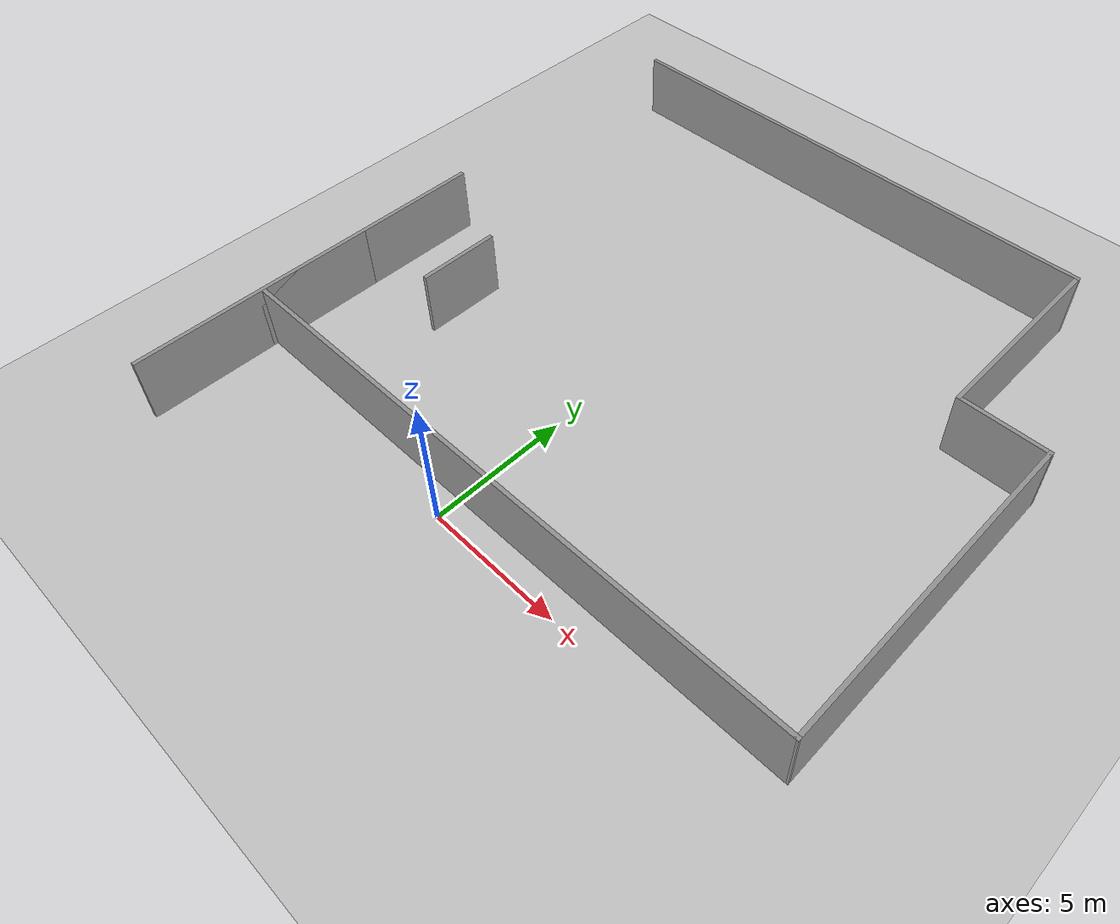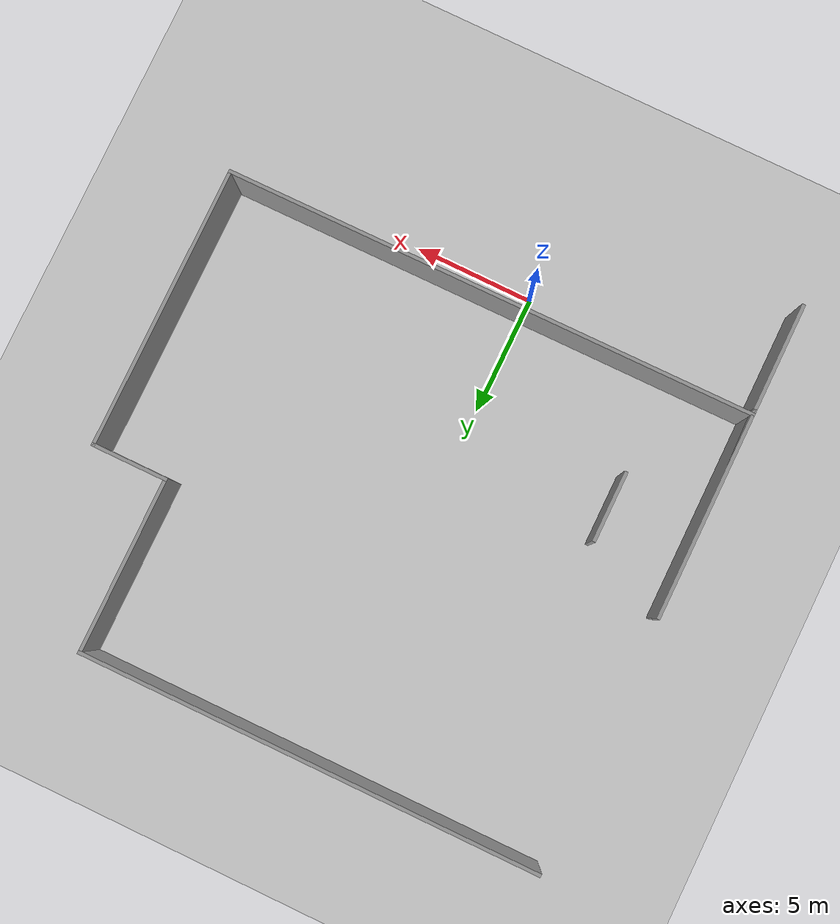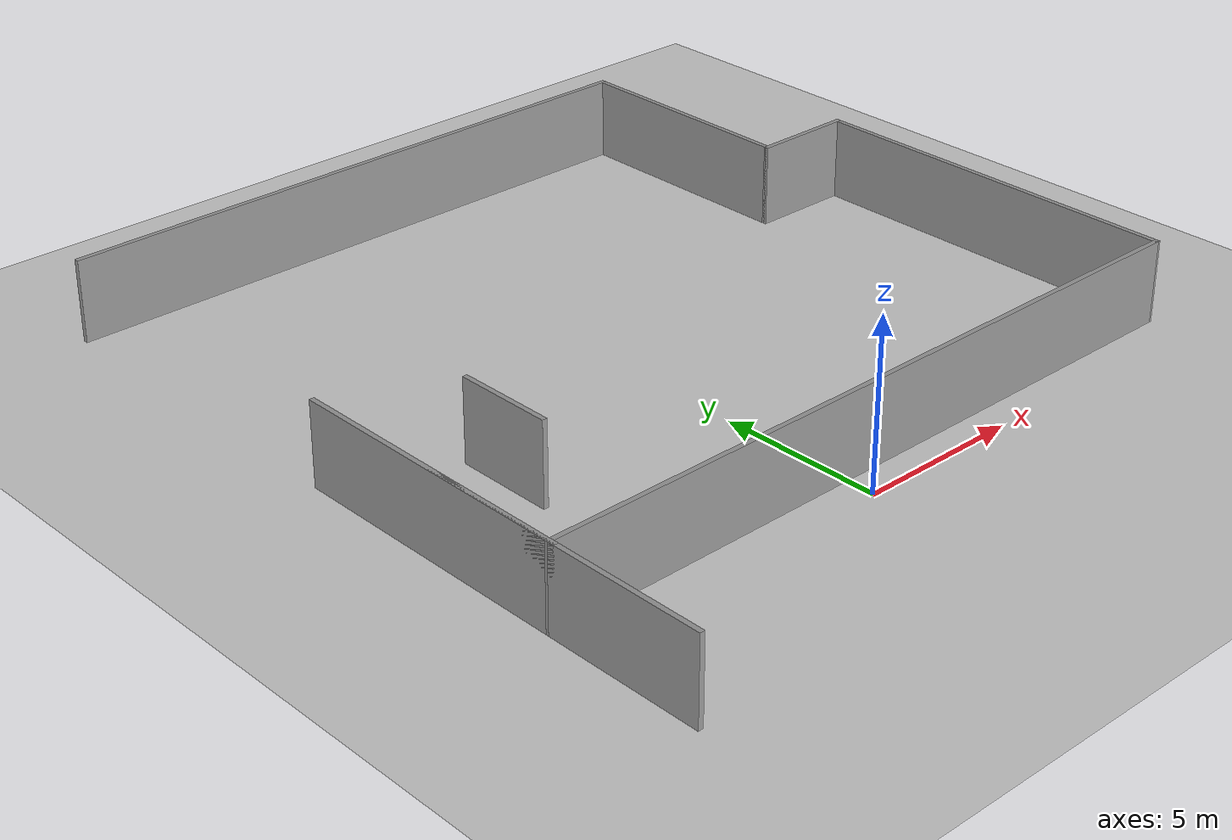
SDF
<sdf version="1.7">
 <world name="default">
  <light name="sun" type="directional">
   <pose>0 0 10 0 -0 0</pose>
   <diffuse>0.8 0.8 0.8 1</diffuse>
   <specular>0.1 0.1 0.1 1</specular>
   <attenuation>
    <range>1000</range>
    <constant>0.9</constant>
    <linear>0.01</linear>
    <quadratic>0.001</quadratic>
   </attenuation>
   <direction>-0.5 0.5 -1</direction>
   <spot><inner_angle>0</inner_angle><outer_angle>0</outer_angle><falloff>0</falloff></spot>
  </light>
  <model name="ground_plane">
   <static>1</static>
   <link name="link">
    <collision name="collision">
     <geometry><plane><normal>0 0 1</normal><size>100 100</size></plane></geometry>
     <surface><friction><ode><mu>100</mu><mu2>50</mu2></ode></friction></surface>
    </collision>
    <visual name="visual">
     <cast_shadows>0</cast_shadows>
     <geometry><plane><normal>0 0 1</normal><size>100 100</size></plane></geometry>
     <material>
      <script><uri>file://media/materials/scripts/gazebo.material</uri><name>Gazebo/Grey</name></script>
     </material>
    </visual>
   </link>
  </model>
  <gravity>0 0 -9.8</gravity>
  <magnetic_field>6e-06 2.3e-05 -4.2e-05</magnetic_field>
  <atmosphere type="adiabatic"/>
  <physics name="default_physics" default="0" type="ode">
   <max_step_size>0.001</max_step_size>
   <real_time_factor>1</real_time_factor>
   <real_time_update_rate>1000</real_time_update_rate>
  </physics>
  <scene><ambient>0.4 0.4 0.4 1</ambient><background>0.7 0.7 0.7 1</background><shadows>1</shadows></scene>
  <spherical_coordinates>
   <surface_model>EARTH_WGS84</surface_model>
   <latitude_deg>0</latitude_deg>
   <longitude_deg>0</longitude_deg>
   <elevation>0</elevation>
   <heading_deg>0</heading_deg>
  </spherical_coordinates>
  <model name="202005_GRobotics_maze">
   <pose>1.42762 10.5835 0 0 0 -1.57</pose>
   <link name="Wall_60">
    <collision name="Wall_60_Collision">
     <geometry><box><size>13.5 0.15 2.5</size></box></geometry>
     <pose>0 0 1.25 0 -0 0</pose>
    </collision>
    <visual name="Wall_60_Visual">
     <pose>0 0 1.25 0 -0 0</pose>
     <geometry><box><size>13.5 0.15 2.5</size></box></geometry>
     <material>
      <script><uri>file://media/materials/scripts/gazebo.material</uri><name>Gazebo/Grey</name></script>
      <ambient>1 1 1 1</ambient>
     </material>
    </visual>
    <pose>7.7 -11.2249 0 0 -0 3.14159</pose>
   </link>
   <link name="Wall_61">
    <collision name="Wall_61_Collision">
     <geometry><box><size>4.4 0.15 2.5</size></box></geometry>
     <pose>0 0 1.25 0 -0 0</pose>
    </collision>
    <visual name="Wall_61_Visual">
     <pose>0 0 1.25 0 -0 0</pose>
     <geometry><box><size>4.4 0.15 2.5</size></box></geometry>
     <material>
      <script><uri>file://media/materials/scripts/gazebo.material</uri><name>Gazebo/Grey</name></script>
      <ambient>1 1 1 1</ambient>
     </material>
    </visual>
    <pose>7.7 -11.2249 0 0 -0 3.14159</pose>
   </link>
   <link name="Wall_27">
    <collision name="Wall_27_Collision">
     <geometry><box><size>3 0.15 2.5</size></box></geometry>
     <pose>0 0 1.25 0 -0 0</pose>
    </collision>
    <visual name="Wall_27_Visual">
     <pose>0 0 1.25 0 -0 0</pose>
     <geometry><box><size>3 0.15 2.5</size></box></geometry>
     <material>
      <script><uri>file://media/materials/scripts/gazebo.material</uri><name>Gazebo/Grey</name></script>
      <ambient>1 1 1 1</ambient>
     </material>
    </visual>
    <pose>4.08027 -7.75634 0 0 -0 3.14159</pose>
   </link>
   <link name="Wall_3">
    <collision name="Wall_3_Collision">
     <geometry><box><size>22.5761 0.15 2.5</size></box></geometry>
     <pose>0 0 1.25 0 -0 0</pose>
    </collision>
    <visual name="Wall_3_Visual">
     <pose>0 0 1.25 0 -0 0</pose>
     <geometry><box><size>22.5761 0.15 2.5</size></box></geometry>
     <material>
      <script><uri>file://media/materials/scripts/gazebo.material</uri><name>Gazebo/Grey</name></script>
      <ambient>1 1 1 1</ambient>
     </material>
    </visual>
    <pose>9.63418 -0.011964 0 0 -0 1.57442</pose>
   </link>
   <link name="Wall_5">
    <collision name="Wall_5_Collision">
     <geometry><box><size>19.5 0.15 2.5</size></box></geometry>
     <pose>0 0 1.25 0 -0 0</pose>
    </collision>
    <visual name="Wall_5_Visual">
     <pose>0 0 1.25 0 -0 0</pose>
     <geometry><box><size>19.5 0.15 2.5</size></box></geometry>
     <material>
      <script><uri>file://media/materials/scripts/gazebo.material</uri><name>Gazebo/Grey</name></script>
      <ambient>1 1 1 1</ambient>
     </material>
    </visual>
    <pose>-9.67513 -1.54994 0 0 -0 1.5708</pose>
   </link>
   <link name="Wall_50">
    <collision name="Wall_50_Collision">
     <geometry><box><size>7.5 0.15 2.5</size></box></geometry>
     <pose>0 0 1.25 0 -0 0</pose>
    </collision>
    <visual name="Wall_50_Visual">
     <pose>0 0 1.25 0 -0 0</pose>
     <geometry><box><size>7.5 0.15 2.5</size></box></geometry>
     <material>
      <script><uri>file://media/materials/scripts/gazebo.material</uri><name>Gazebo/Grey</name></script>
      <ambient>1 1 1 1</ambient>
     </material>
    </visual>
    <pose>-6.00014 8.12506 0 0 -0 0</pose>
   </link>
   <link name="Wall_52">
    <collision name="Wall_52_Collision">
     <geometry><box><size>3.25 0.15 2.5</size></box></geometry>
     <pose>0 0 1.25 0 -0 0</pose>
    </collision>
    <visual name="Wall_52_Visual">
     <pose>0 0 1.25 0 -0 0</pose>
     <geometry><box><size>3.25 0.15 2.5</size></box></geometry>
     <material>
      <script><uri>file://media/materials/scripts/gazebo.material</uri><name>Gazebo/Grey</name></script>
      <ambient>1 1 1 1</ambient>
     </material>
    </visual>
    <pose>-2.32513 9.67506 0 0 -0 1.5708</pose>
   </link>
   <link name="Wall_53">
    <collision name="Wall_53_Collision">
     <geometry><box><size>12.0687 0.15 2.5</size></box></geometry>
     <pose>0 0 1.25 0 -0 0</pose>
    </collision>
    <visual name="Wall_53_Visual">
     <pose>0 0 1.25 0 -0 0</pose>
     <geometry><box><size>12.0687 0.15 2.5</size></box></geometry>
     <material>
      <script><uri>file://media/materials/scripts/gazebo.material</uri><name>Gazebo/Grey</name></script>
      <ambient>1 1 1 1</ambient>
     </material>
    </visual>
    <pose>3.63418 11.213 0 0 0 -0.002018</pose>
   </link>
   <static>1</static>
  </model>
  <audio><device>default</device></audio>
 </world>
</sdf>
